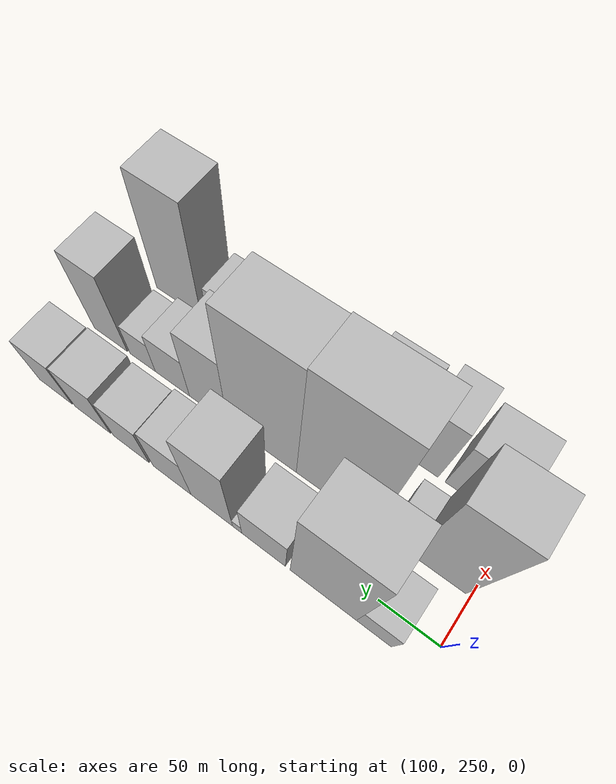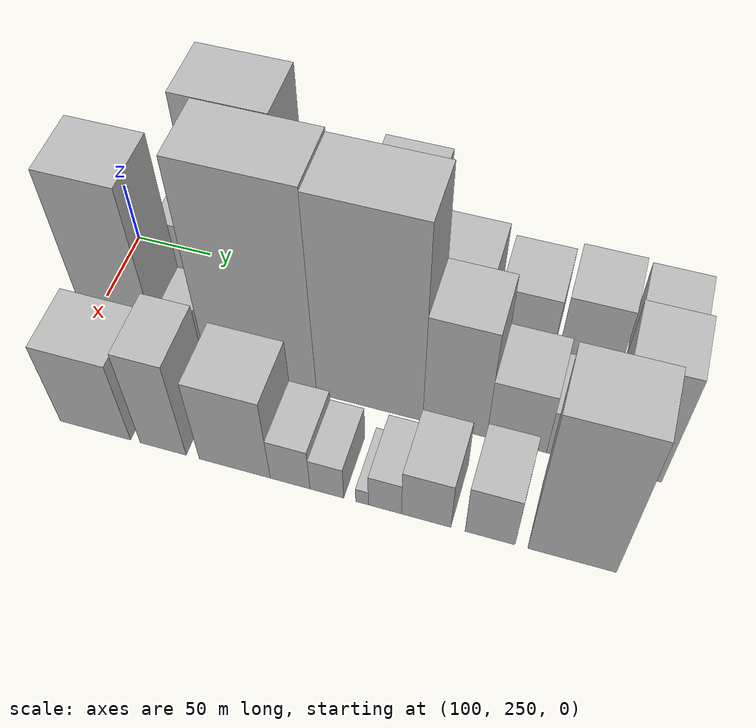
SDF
<sdf version="1.6">
 <world name="default">
  <model name="building_25">
   <static>1</static>
   <pose>100.0000 290.9221 0 0.000000 0.000000 0.000000</pose>
   <link name="link">
    <pose>0 0 24.00 0 0 0</pose>
    <collision name="collision"><geometry><box><size>40.0000 28.2296 48.0000</size></box></geometry></collision>
    <visual name="visual">
     <cast_shadows>0</cast_shadows>
     <geometry><box><size>40.0000 28.2296 48.0000</size></box></geometry>
     <material>
      <script>
       <uri>model://HANNAS_wall/materials/scripts</uri>
       <uri>model://HANNAS_wall/materials/textures</uri>
       <name>vrc/HANNAS_wall</name>
      </script>
     </material>
    </visual>
   </link>
  </model>
  <model name="building_26">
   <static>1</static>
   <pose>100.0000 333.1549 0 0.000000 0.000000 0.000000</pose>
   <link name="link">
    <pose>0 0 81.00 0 0 0</pose>
    <collision name="collision"><geometry><box><size>40.0000 56.2360 162.0000</size></box></geometry></collision>
    <visual name="visual">
     <cast_shadows>0</cast_shadows>
     <geometry><box><size>40.0000 56.2360 162.0000</size></box></geometry>
     <material>
      <script>
       <uri>model://HANNAS_wall/materials/scripts</uri>
       <uri>model://HANNAS_wall/materials/textures</uri>
       <name>vrc/HANNAS_wall</name>
      </script>
     </material>
    </visual>
   </link>
  </model>
  <model name="building_27">
   <static>1</static>
   <pose>100.0000 384.6901 0 0.000000 0.000000 0.000000</pose>
   <link name="link">
    <pose>0 0 34.50 0 0 0</pose>
    <collision name="collision"><geometry><box><size>40.0000 38.8345 69.0000</size></box></geometry></collision>
    <visual name="visual">
     <cast_shadows>0</cast_shadows>
     <geometry><box><size>40.0000 38.8345 69.0000</size></box></geometry>
     <material>
      <script>
       <uri>model://HANNAS_wall/materials/scripts</uri>
       <uri>model://HANNAS_wall/materials/textures</uri>
       <name>vrc/HANNAS_wall</name>
      </script>
     </material>
    </visual>
   </link>
  </model>
  <model name="building_28">
   <static>1</static>
   <pose>100.0000 408.3020 0 0.000000 0.000000 0.000000</pose>
   <link name="link">
    <pose>0 0 9.00 0 0 0</pose>
    <collision name="collision"><geometry><box><size>40.0000 8.3891 18.0000</size></box></geometry></collision>
    <visual name="visual">
     <cast_shadows>0</cast_shadows>
     <geometry><box><size>40.0000 8.3891 18.0000</size></box></geometry>
     <material>
      <script>
       <uri>model://HANNAS_wall/materials/scripts</uri>
       <uri>model://HANNAS_wall/materials/textures</uri>
       <name>vrc/HANNAS_wall</name>
      </script>
     </material>
    </visual>
   </link>
  </model>
  <model name="building_29">
   <static>1</static>
   <pose>100.0000 431.8983 0 0.000000 0.000000 0.000000</pose>
   <link name="link">
    <pose>0 0 61.50 0 0 0</pose>
    <collision name="collision"><geometry><box><size>40.0000 38.8036 123.0000</size></box></geometry></collision>
    <visual name="visual">
     <cast_shadows>0</cast_shadows>
     <geometry><box><size>40.0000 38.8036 123.0000</size></box></geometry>
     <material>
      <script>
       <uri>model://HANNAS_wall/materials/scripts</uri>
       <uri>model://HANNAS_wall/materials/textures</uri>
       <name>vrc/HANNAS_wall</name>
      </script>
     </material>
    </visual>
   </link>
  </model>
  <model name="building_30">
   <static>1</static>
   <pose>100.0000 469.7049 0 0.000000 0.000000 0.000000</pose>
   <link name="link">
    <pose>0 0 36.00 0 0 0</pose>
    <collision name="collision"><geometry><box><size>40.0000 36.8095 72.0000</size></box></geometry></collision>
    <visual name="visual">
     <cast_shadows>0</cast_shadows>
     <geometry><box><size>40.0000 36.8095 72.0000</size></box></geometry>
     <material>
      <script>
       <uri>model://HANNAS_wall/materials/scripts</uri>
       <uri>model://HANNAS_wall/materials/textures</uri>
       <name>vrc/HANNAS_wall</name>
      </script>
     </material>
    </visual>
   </link>
  </model>
  <model name="building_31">
   <static>1</static>
   <pose>100.0000 510.0738 0 0.000000 0.000000 0.000000</pose>
   <link name="link">
    <pose>0 0 31.50 0 0 0</pose>
    <collision name="collision"><geometry><box><size>40.0000 35.9283 63.0000</size></box></geometry></collision>
    <visual name="visual">
     <cast_shadows>0</cast_shadows>
     <geometry><box><size>40.0000 35.9283 63.0000</size></box></geometry>
     <material>
      <script>
       <uri>model://HANNAS_wall/materials/scripts</uri>
       <uri>model://HANNAS_wall/materials/textures</uri>
       <name>vrc/HANNAS_wall</name>
      </script>
     </material>
    </visual>
   </link>
  </model>
  <model name="building_32">
   <static>1</static>
   <pose>100.0000 549.5832 0 0.000000 0.000000 0.000000</pose>
   <link name="link">
    <pose>0 0 34.50 0 0 0</pose>
    <collision name="collision"><geometry><box><size>40.0000 37.0906 69.0000</size></box></geometry></collision>
    <visual name="visual">
     <cast_shadows>0</cast_shadows>
     <geometry><box><size>40.0000 37.0906 69.0000</size></box></geometry>
     <material>
      <script>
       <uri>model://HANNAS_wall/materials/scripts</uri>
       <uri>model://HANNAS_wall/materials/textures</uri>
       <name>vrc/HANNAS_wall</name>
      </script>
     </material>
    </visual>
   </link>
  </model>
  <model name="building_33">
   <static>1</static>
   <pose>100.0000 588.9337 0 0.000000 0.000000 0.000000</pose>
   <link name="link">
    <pose>0 0 33.00 0 0 0</pose>
    <collision name="collision"><geometry><box><size>40.0000 35.6104 66.0000</size></box></geometry></collision>
    <visual name="visual">
     <cast_shadows>0</cast_shadows>
     <geometry><box><size>40.0000 35.6104 66.0000</size></box></geometry>
     <material>
      <script>
       <uri>model://HANNAS_wall/materials/scripts</uri>
       <uri>model://HANNAS_wall/materials/textures</uri>
       <name>vrc/HANNAS_wall</name>
      </script>
     </material>
    </visual>
   </link>
  </model>
  <model name="building_58">
   <static>1</static>
   <pose>160.0000 276.8213 0 0.000000 0.000000 0.000000</pose>
   <link name="link">
    <pose>0 0 75.00 0 0 0</pose>
    <collision name="collision"><geometry><box><size>40.0000 45.7883 150.0000</size></box></geometry></collision>
    <visual name="visual">
     <cast_shadows>0</cast_shadows>
     <geometry><box><size>40.0000 45.7883 150.0000</size></box></geometry>
     <material>
      <script>
       <uri>model://HANNAS_wall/materials/scripts</uri>
       <uri>model://HANNAS_wall/materials/textures</uri>
       <name>vrc/HANNAS_wall</name>
      </script>
     </material>
    </visual>
   </link>
  </model>
  <model name="building_59">
   <static>1</static>
   <pose>160.0000 310.1800 0 0.000000 0.000000 0.000000</pose>
   <link name="link">
    <pose>0 0 18.00 0 0 0</pose>
    <collision name="collision"><geometry><box><size>40.0000 20.9290 36.0000</size></box></geometry></collision>
    <visual name="visual">
     <cast_shadows>0</cast_shadows>
     <geometry><box><size>40.0000 20.9290 36.0000</size></box></geometry>
     <material>
      <script>
       <uri>model://HANNAS_wall/materials/scripts</uri>
       <uri>model://HANNAS_wall/materials/textures</uri>
       <name>vrc/HANNAS_wall</name>
      </script>
     </material>
    </visual>
   </link>
  </model>
  <model name="building_60">
   <static>1</static>
   <pose>160.0000 364.5335 0 0.000000 0.000000 0.000000</pose>
   <link name="link">
    <pose>0 0 91.50 0 0 0</pose>
    <collision name="collision"><geometry><box><size>40.0000 69.7780 183.0000</size></box></geometry></collision>
    <visual name="visual">
     <cast_shadows>0</cast_shadows>
     <geometry><box><size>40.0000 69.7780 183.0000</size></box></geometry>
     <material>
      <script>
       <uri>model://HANNAS_wall/materials/scripts</uri>
       <uri>model://HANNAS_wall/materials/textures</uri>
       <name>vrc/HANNAS_wall</name>
      </script>
     </material>
    </visual>
   </link>
  </model>
  <model name="building_61">
   <static>1</static>
   <pose>160.0000 431.9102 0 0.000000 0.000000 0.000000</pose>
   <link name="link">
    <pose>0 0 90.00 0 0 0</pose>
    <collision name="collision"><geometry><box><size>40.0000 64.9753 180.0000</size></box></geometry></collision>
    <visual name="visual">
     <cast_shadows>0</cast_shadows>
     <geometry><box><size>40.0000 64.9753 180.0000</size></box></geometry>
     <material>
      <script>
       <uri>model://HANNAS_wall/materials/scripts</uri>
       <uri>model://HANNAS_wall/materials/textures</uri>
       <name>vrc/HANNAS_wall</name>
      </script>
     </material>
    </visual>
   </link>
  </model>
  <model name="building_62">
   <static>1</static>
   <pose>160.0000 483.4911 0 0.000000 0.000000 0.000000</pose>
   <link name="link">
    <pose>0 0 52.50 0 0 0</pose>
    <collision name="collision"><geometry><box><size>40.0000 38.1865 105.0000</size></box></geometry></collision>
    <visual name="visual">
     <cast_shadows>0</cast_shadows>
     <geometry><box><size>40.0000 38.1865 105.0000</size></box></geometry>
     <material>
      <script>
       <uri>model://HANNAS_wall/materials/scripts</uri>
       <uri>model://HANNAS_wall/materials/textures</uri>
       <name>vrc/HANNAS_wall</name>
      </script>
     </material>
    </visual>
   </link>
  </model>
  <model name="building_63">
   <static>1</static>
   <pose>160.0000 520.1741 0 0.000000 0.000000 0.000000</pose>
   <link name="link">
    <pose>0 0 30.00 0 0 0</pose>
    <collision name="collision"><geometry><box><size>40.0000 35.1795 60.0000</size></box></geometry></collision>
    <visual name="visual">
     <cast_shadows>0</cast_shadows>
     <geometry><box><size>40.0000 35.1795 60.0000</size></box></geometry>
     <material>
      <script>
       <uri>model://HANNAS_wall/materials/scripts</uri>
       <uri>model://HANNAS_wall/materials/textures</uri>
       <name>vrc/HANNAS_wall</name>
      </script>
     </material>
    </visual>
   </link>
  </model>
  <model name="building_64">
   <static>1</static>
   <pose>160.0000 551.1591 0 0.000000 0.000000 0.000000</pose>
   <link name="link">
    <pose>0 0 22.50 0 0 0</pose>
    <collision name="collision"><geometry><box><size>40.0000 26.7905 45.0000</size></box></geometry></collision>
    <visual name="visual">
     <cast_shadows>0</cast_shadows>
     <geometry><box><size>40.0000 26.7905 45.0000</size></box></geometry>
     <material>
      <script>
       <uri>model://HANNAS_wall/materials/scripts</uri>
       <uri>model://HANNAS_wall/materials/textures</uri>
       <name>vrc/HANNAS_wall</name>
      </script>
     </material>
    </visual>
   </link>
  </model>
  <model name="building_65">
   <static>1</static>
   <pose>160.0000 585.5333 0 0.000000 0.000000 0.000000</pose>
   <link name="link">
    <pose>0 0 54.00 0 0 0</pose>
    <collision name="collision"><geometry><box><size>40.0000 35.9578 108.0000</size></box></geometry></collision>
    <visual name="visual">
     <cast_shadows>0</cast_shadows>
     <geometry><box><size>40.0000 35.9578 108.0000</size></box></geometry>
     <material>
      <script>
       <uri>model://HANNAS_wall/materials/scripts</uri>
       <uri>model://HANNAS_wall/materials/textures</uri>
       <name>vrc/HANNAS_wall</name>
      </script>
     </material>
    </visual>
   </link>
  </model>
  <model name="building_97">
   <static>1</static>
   <pose>220.0000 284.4359 0 0.000000 0.000000 0.000000</pose>
   <link name="link">
    <pose>0 0 39.00 0 0 0</pose>
    <collision name="collision"><geometry><box><size>40.0000 44.3403 78.0000</size></box></geometry></collision>
    <visual name="visual">
     <cast_shadows>0</cast_shadows>
     <geometry><box><size>40.0000 44.3403 78.0000</size></box></geometry>
     <material>
      <script>
       <uri>model://HANNAS_wall/materials/scripts</uri>
       <uri>model://HANNAS_wall/materials/textures</uri>
       <name>vrc/HANNAS_wall</name>
      </script>
     </material>
    </visual>
   </link>
  </model>
  <model name="building_98">
   <static>1</static>
   <pose>220.0000 326.8142 0 0.000000 0.000000 0.000000</pose>
   <link name="link">
    <pose>0 0 46.50 0 0 0</pose>
    <collision name="collision"><geometry><box><size>40.0000 28.4163 93.0000</size></box></geometry></collision>
    <visual name="visual">
     <cast_shadows>0</cast_shadows>
     <geometry><box><size>40.0000 28.4163 93.0000</size></box></geometry>
     <material>
      <script>
       <uri>model://HANNAS_wall/materials/scripts</uri>
       <uri>model://HANNAS_wall/materials/textures</uri>
       <name>vrc/HANNAS_wall</name>
      </script>
     </material>
    </visual>
   </link>
  </model>
  <model name="building_99">
   <static>1</static>
   <pose>220.0000 370.4898 0 0.000000 0.000000 0.000000</pose>
   <link name="link">
    <pose>0 0 40.50 0 0 0</pose>
    <collision name="collision"><geometry><box><size>40.0000 42.9351 81.0000</size></box></geometry></collision>
    <visual name="visual">
     <cast_shadows>0</cast_shadows>
     <geometry><box><size>40.0000 42.9351 81.0000</size></box></geometry>
     <material>
      <script>
       <uri>model://HANNAS_wall/materials/scripts</uri>
       <uri>model://HANNAS_wall/materials/textures</uri>
       <name>vrc/HANNAS_wall</name>
      </script>
     </material>
    </visual>
   </link>
  </model>
  <model name="building_100">
   <static>1</static>
   <pose>220.0000 403.7696 0 0.000000 0.000000 0.000000</pose>
   <link name="link">
    <pose>0 0 21.00 0 0 0</pose>
    <collision name="collision"><geometry><box><size>40.0000 23.6244 42.0000</size></box></geometry></collision>
    <visual name="visual">
     <cast_shadows>0</cast_shadows>
     <geometry><box><size>40.0000 23.6244 42.0000</size></box></geometry>
     <material>
      <script>
       <uri>model://HANNAS_wall/materials/scripts</uri>
       <uri>model://HANNAS_wall/materials/textures</uri>
       <name>vrc/HANNAS_wall</name>
      </script>
     </material>
    </visual>
   </link>
  </model>
  <model name="building_101">
   <static>1</static>
   <pose>220.0000 425.4740 0 0.000000 0.000000 0.000000</pose>
   <link name="link">
    <pose>0 0 16.50 0 0 0</pose>
    <collision name="collision"><geometry><box><size>40.0000 19.7845 33.0000</size></box></geometry></collision>
    <visual name="visual">
     <cast_shadows>0</cast_shadows>
     <geometry><box><size>40.0000 19.7845 33.0000</size></box></geometry>
     <material>
      <script>
       <uri>model://HANNAS_wall/materials/scripts</uri>
       <uri>model://HANNAS_wall/materials/textures</uri>
       <name>vrc/HANNAS_wall</name>
      </script>
     </material>
    </visual>
   </link>
  </model>
  <model name="building_102">
   <static>1</static>
   <pose>220.0000 446.0143 0 0.000000 0.000000 0.000000</pose>
   <link name="link">
    <pose>0 0 7.50 0 0 0</pose>
    <collision name="collision"><geometry><box><size>40.0000 7.2961 15.0000</size></box></geometry></collision>
    <visual name="visual">
     <cast_shadows>0</cast_shadows>
     <geometry><box><size>40.0000 7.2961 15.0000</size></box></geometry>
     <material>
      <script>
       <uri>model://HANNAS_wall/materials/scripts</uri>
       <uri>model://HANNAS_wall/materials/textures</uri>
       <name>vrc/HANNAS_wall</name>
      </script>
     </material>
    </visual>
   </link>
  </model>
  <model name="building_103">
   <static>1</static>
   <pose>220.0000 459.1790 0 0.000000 0.000000 0.000000</pose>
   <link name="link">
    <pose>0 0 16.50 0 0 0</pose>
    <collision name="collision"><geometry><box><size>40.0000 19.0331 33.0000</size></box></geometry></collision>
    <visual name="visual">
     <cast_shadows>0</cast_shadows>
     <geometry><box><size>40.0000 19.0331 33.0000</size></box></geometry>
     <material>
      <script>
       <uri>model://HANNAS_wall/materials/scripts</uri>
       <uri>model://HANNAS_wall/materials/textures</uri>
       <name>vrc/HANNAS_wall</name>
      </script>
     </material>
    </visual>
   </link>
  </model>
  <model name="building_104">
   <static>1</static>
   <pose>220.0000 482.7803 0 0.000000 0.000000 0.000000</pose>
   <link name="link">
    <pose>0 0 24.00 0 0 0</pose>
    <collision name="collision"><geometry><box><size>40.0000 28.1695 48.0000</size></box></geometry></collision>
    <visual name="visual">
     <cast_shadows>0</cast_shadows>
     <geometry><box><size>40.0000 28.1695 48.0000</size></box></geometry>
     <material>
      <script>
       <uri>model://HANNAS_wall/materials/scripts</uri>
       <uri>model://HANNAS_wall/materials/textures</uri>
       <name>vrc/HANNAS_wall</name>
      </script>
     </material>
    </visual>
   </link>
  </model>
  <model name="building_105">
   <static>1</static>
   <pose>220.0000 518.8453 0 0.000000 0.000000 0.000000</pose>
   <link name="link">
    <pose>0 0 25.50 0 0 0</pose>
    <collision name="collision"><geometry><box><size>40.0000 27.9605 51.0000</size></box></geometry></collision>
    <visual name="visual">
     <cast_shadows>0</cast_shadows>
     <geometry><box><size>40.0000 27.9605 51.0000</size></box></geometry>
     <material>
      <script>
       <uri>model://HANNAS_wall/materials/scripts</uri>
       <uri>model://HANNAS_wall/materials/textures</uri>
       <name>vrc/HANNAS_wall</name>
      </script>
     </material>
    </visual>
   </link>
  </model>
  <model name="building_106">
   <static>1</static>
   <pose>220.0000 563.9972 0 0.000000 0.000000 0.000000</pose>
   <link name="link">
    <pose>0 0 72.00 0 0 0</pose>
    <collision name="collision"><geometry><box><size>40.0000 48.3433 144.0000</size></box></geometry></collision>
    <visual name="visual">
     <cast_shadows>0</cast_shadows>
     <geometry><box><size>40.0000 48.3433 144.0000</size></box></geometry>
     <material>
      <script>
       <uri>model://HANNAS_wall/materials/scripts</uri>
       <uri>model://HANNAS_wall/materials/textures</uri>
       <name>vrc/HANNAS_wall</name>
      </script>
     </material>
    </visual>
   </link>
  </model>
 </world>
</sdf>
